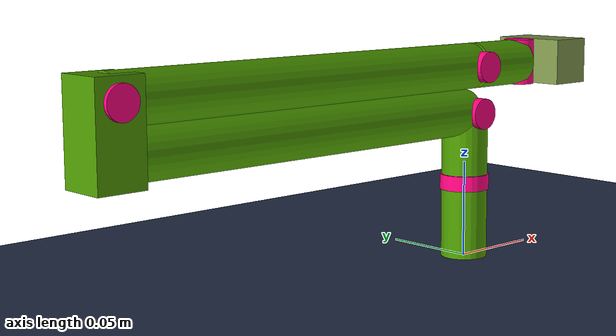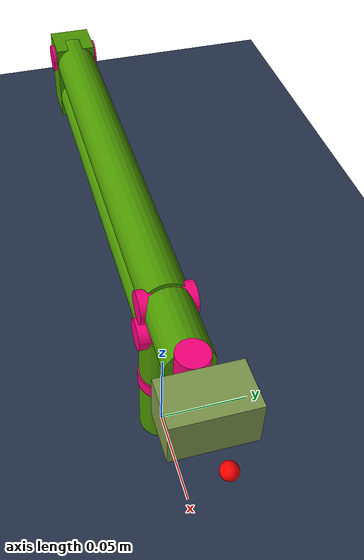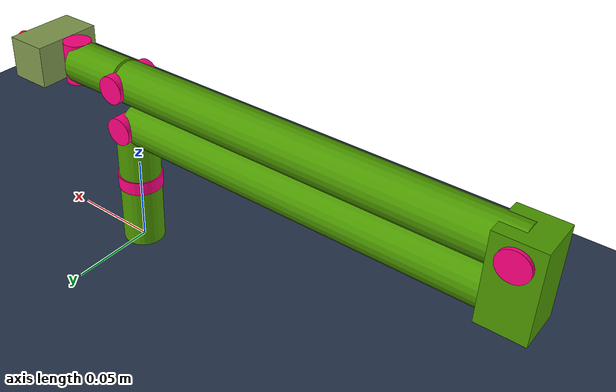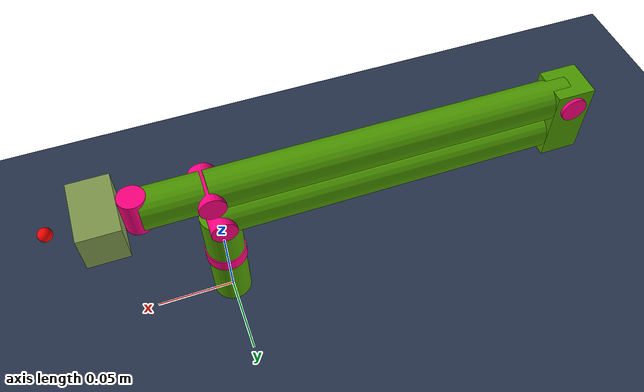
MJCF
<mujoco model="scene">
    <include file="AT_arm.xml"/>
    <visual>
        <global fovy="45" linewidth="2" glow="0.3"/>
        <quality shadowsize="4096" numslices="28"/>
        <map stiffness="50" stiffnessrot="100"/>
        <scale forcewidth="0.03" contactwidth="0.15" contactheight="0.1" connect="0.1" com="0.2" jointlength="2.5" jointwidth="0.05" actuatorlength="0.5" actuatorwidth="0.3" framelength="1" framewidth="0.03"/>
        <rgba haze="0.6 0.8 0.9 1" force="0 1 0 0.5" com="0 0 1 1"/>
    </visual>
    <asset>
        <texture name="texplane" type="2d" builtin="checker" width="512" height="512" mark="edge" rgb1="0.2 0.3 0.4" rgb2="0.1 0.1 0.2" markrgb="1 1 1"/>
        <texture name="texgeom" type="cube" builtin="flat" width="512" height="512" mark="cross" rgb1="0.8 0.6 0.4" rgb2="0.8 0.6 0.4" markrgb="1 1 1"/>
        <texture name="sky" type="skybox" builtin="gradient" width="512" height="512" rgb1="1 1 1" rgb2="0.6 0.8 1"/>
        <material name="MatGnd" reflectance="0" specular="1" shininess="1" rgba="0 0.4 0.5 1"/>
        <material name="MatGeom" texture="texgeom" texuniform="true"/>
        <material name="MatPlane" texture="texplane" reflectance="0" texrepeat="1 1" texuniform="true"/>
    </asset>
    <worldbody>
        <light directional="true" pos=" 5 -5 5" dir="-0.5 0.5 -1" diffuse="0.3 0.3 0.3" specular="0.0 0.0 0.0" castshadow="false"/>
        <light directional="true" pos=" 5 5 5" dir="-0.5 -0.5 -1" diffuse="0.3 0.3 0.3" specular="0.0 0.0 0.0" castshadow="false"/>
        <light directional="true" pos="-5 5 5" dir=" 0.5 -0.5 -1" diffuse="0.3 0.3 0.3" specular="0.0 0.0 0.0" castshadow="false"/>
        <light directional="true" pos="-5 -5 5" dir=" 0.5 0.5 -1" diffuse="0.3 0.3 0.3" specular="0.0 0.0 0.0" castshadow="false"/>
        <light directional="true" pos=" 0 0 5" dir=" 0.0 0.0 -1" diffuse="0.1 0.1 0.1" specular="0.1 0.1 0.1" castshadow="false"/>
        <!--  Ground Floor  -->
        <geom name="Ground Floor" type="plane" pos="0 0 0" size="0 0 100" material="MatPlane"/>
    </worldbody>
</mujoco>

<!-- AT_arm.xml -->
<mujoco model="AT arm">
    <compiler inertiafromgeom="true" angle="degree"/>
    <option timestep="0.005" gravity="0 0 -9.81" cone="elliptic" jacobian="auto" solver="Newton" impratio="1.0"/>
    <!--  collision="predefined"  -->
    <option>
        <flag gravity="enable" override="enable"/>
    </option>
    <default>
        <geom contype="1" conaffinity="1" condim="3"/>
        <joint limited="false" damping="0.5" armature="0.1" stiffness="0" frictionloss="0.1"/>
        <motor gear="1 0 0 0 0 0" ctrllimited="false" ctrlrange="-100 100"/>
    </default>
    <worldbody>
        <!--  Link1  -->
        <body name="link1" pos="0 0 0" euler="0 0 0">
            <joint name="L1" pos="0 0 0" type="hinge" axis="0 0 1" limited="false"/>
            <geom type="cylinder" pos="0 0 0.03835" size="0.012 0.03835" rgba="0.3 0.6 0 1"/>
            <geom type="cylinder" pos="0 0 0.04" euler="0 0 0" mass="0.082" size="0.0128 0.004" rgba="1 0 0.5 1"/>
            <!--  Link2  -->
            <body name="link2" pos="0 0 0.0765" euler="90 0 90">
                <joint name="L2" pos="0 0 0" type="hinge" axis="0 0 1" limited="false" range="-150 150"/>
                <geom type="cylinder" pos="0 0.110 0" euler="-90 0 0" size="0.012 0.110" rgba="0.3 0.6 0 1"/>
                <geom type="cylinder" pos="0 0 0" euler="0 0 0" mass="0.082" size="0.008 0.014" rgba="1 0 0.5 1"/>
                <geom type="box" pos="0.011 0.220 0" euler="0 0 0" size="0.024 0.012 0.012" rgba="0.3 0.6 0 1"/>
                <!--  Link3 -->
                <body name="link3" pos="0.024 0.220 0" euler="0 0 -180">
                    <joint name="L3" pos="0 0 0" type="hinge" axis="0 0 1" limited="false" range="-200 100"/>
                    <geom type="cylinder" pos="0 0.111875 0" euler="-90 0 0" mass="0.04"  size="0.012 0.111875" rgba="0.3 0.6 0 1"/>
                    <geom type="cylinder" pos="0 0 0" euler="0 0 0" mass="0.082" size="0.008 0.014" rgba="1 0 0.5 1"/>
                    <!--  Link4 -->
                    <body name="link4" pos="0 0.22375 0" euler="0 0 0">
                        <joint name="L4" pos="0 0 0" type="hinge" axis="0 0 1" limited="false" range="-160 160"/>
                        <geom type="cylinder" pos="0 0.02 0" euler="-90 0 0" mass="0.01" size="0.012 0.018" rgba="0.3 0.6 0 1"/>
                        <geom type="cylinder" pos="0 0 0" euler="0 0 0" mass="0.082" size="0.008 0.014" rgba="1 0 0.5 1"/>
                        <!-- Link5 -->
                        <body name="link5" pos="0 0.04 0" euler="0 -90 0">
                            <joint name="L5" pos="0 0 0" type="hinge" axis="0 0 1" limited="false" range="-160 160"/>
                            <geom type="box" pos="0 0.02 0" euler="0 0 0" mass="0.02" size="0.02 0.012 0.012" rgba="0.5 0.6 0.3 1"/>
                            <geom type="cylinder" pos="0 0 0" euler="0 0 0" mass="0.082" size="0.008 0.012" rgba="1 0 0.5 1"/>
                            <!--  Fingers -->
                            <body name="fingers" pos="0 0.048 0" euler="-90 0 90">
                                <geom type="sphere" pos="0 0 0" euler="0 0 0" mass="0.2" size="0.002" rgba="0.5 0.6 0.3 1"/>
                                <site name="EE" type="sphere" pos="0 0 0" size="0.004" rgba="1 0 0 1"/>
                            </body>
                        </body>
                    </body>
                </body>
            </body>
        </body>
    </worldbody>
    <actuator>
        <motor joint="L1" name="link1" gear="1" ctrllimited="true" ctrlrange="-1193 1193"/>
        <motor joint="L2" name="link2" gear="1" ctrllimited="true" ctrlrange="-1193 1193"/>
        <motor joint="L3" name="link3" gear="1" ctrllimited="true" ctrlrange="-1193 1193"/>
        <motor joint="L4" name="link4" gear="1" ctrllimited="true" ctrlrange="-1193 1193"/>
        <motor joint="L5" name="link5" gear="1" ctrllimited="true" ctrlrange="-1193 1193"/>
    </actuator>
</mujoco>
